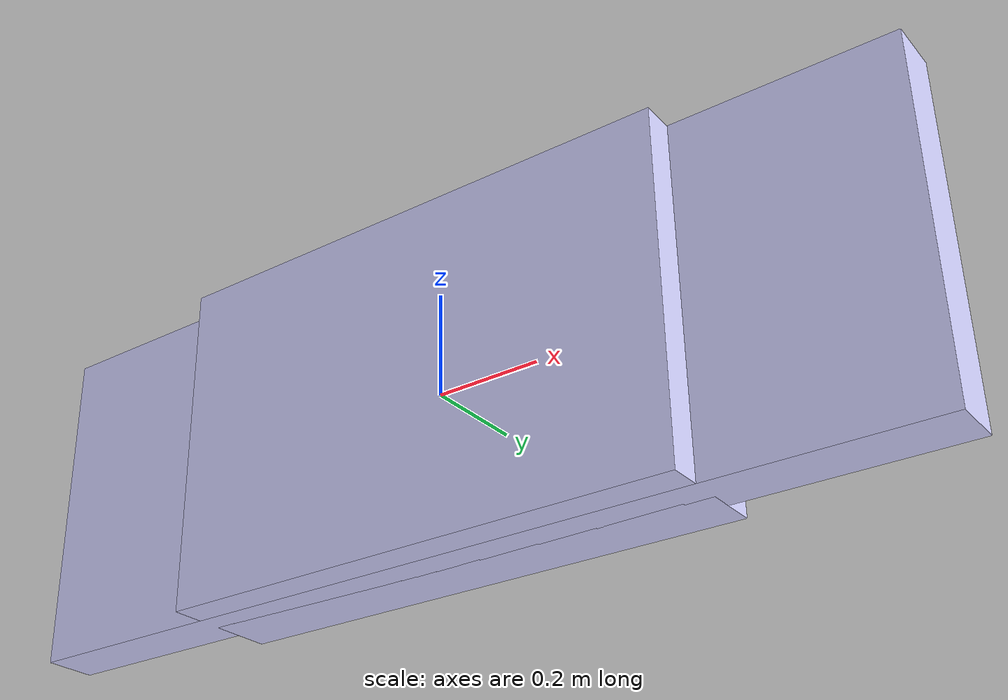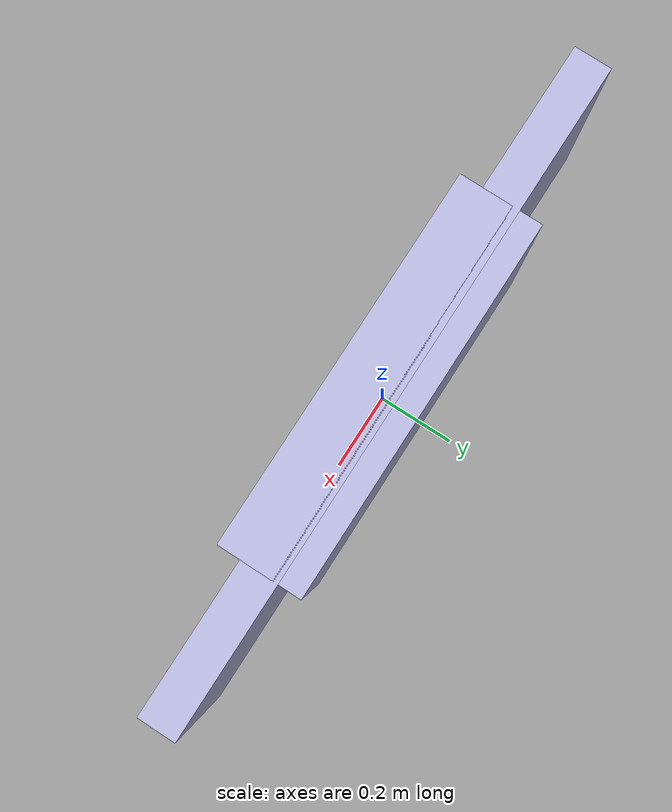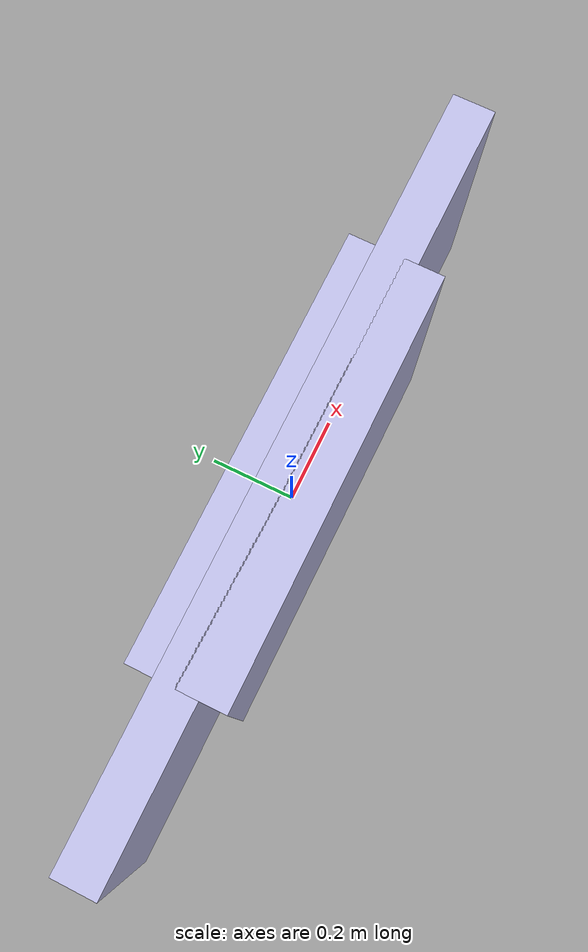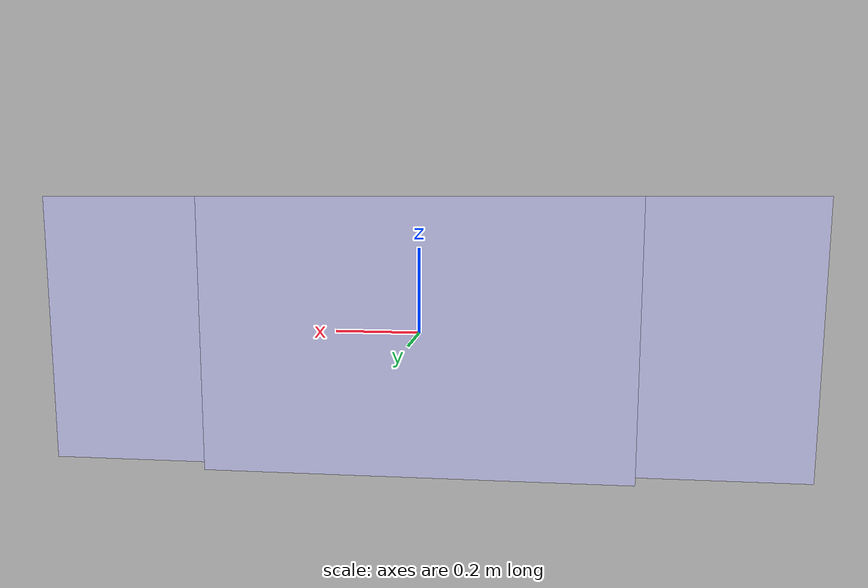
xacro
<?xml version="1.0" encoding="utf-8"?>

<robot name="Mobile_Leveling_Platform_V2" xmlns:xacro="http://ros.org/wiki/xacro">

  <link
    name="base_link">
    <inertial>
      <origin
        xyz="0 0 0"
        rpy="0 0 0" />
      <mass
        value="30" />
      <inertia
        ixx="3.1779"
        ixy="0"
        ixz="0"
        iyy="3.6754"
        iyz="0"
        izz="4.4975" />
    </inertial>
    <visual>
      <origin
        xyz="0 0 0"
        rpy="0 0 0" />
      <geometry>
        <mesh
          filename="package://Mobile_Leveling_Platform_V2/meshes/base_link_box.STL" />
      </geometry>
      <material
        name="">
        <color
          rgba="0.82353 0.82353 1 1" />
      </material>
    </visual>
    <collision>
      <origin
        xyz="0 0 0"
        rpy="0 0 0" />
      <geometry>
        <mesh
          filename="package://Mobile_Leveling_Platform_V2/meshes/base_link_box.STL" />
      </geometry>
    </collision>
  </link>
  <link
    name="mating_link">
    <inertial>
      <origin
        xyz="0 0 0"
        rpy="0 0 0" />
      <mass
        value="15" />
      <inertia
        ixx="1.395284708"
        ixy="0"
        ixz="0"
        iyy="2.07140337"
        iyz="0"
        izz="2.676119029" />
    </inertial>
    <visual>
      <origin
        xyz="0 0 0"
        rpy="0 0 0" />
      <geometry>
        <mesh
          filename="package://Mobile_Leveling_Platform_V2/meshes/mating_link_box.STL" />
      </geometry>
      <material
        name="">
        <color
          rgba="0.82353 0.82353 1 1" />
      </material>
    </visual>
    <collision>
      <origin
        xyz="0 0 0"
        rpy="0 0 0" />
      <geometry>
        <mesh
          filename="package://Mobile_Leveling_Platform_V2/meshes/mating_link_box.STL" />
      </geometry>
    </collision>
  </link>
  <joint
    name="mating_joint"
    type="fixed">
    <origin
      xyz="0 0 0"
      rpy="1.5708 0 0" />
    <parent
      link="base_link" />
    <child
      link="mating_link" />
    <axis
      xyz="0 0 0" />
  </joint>

</robot>
